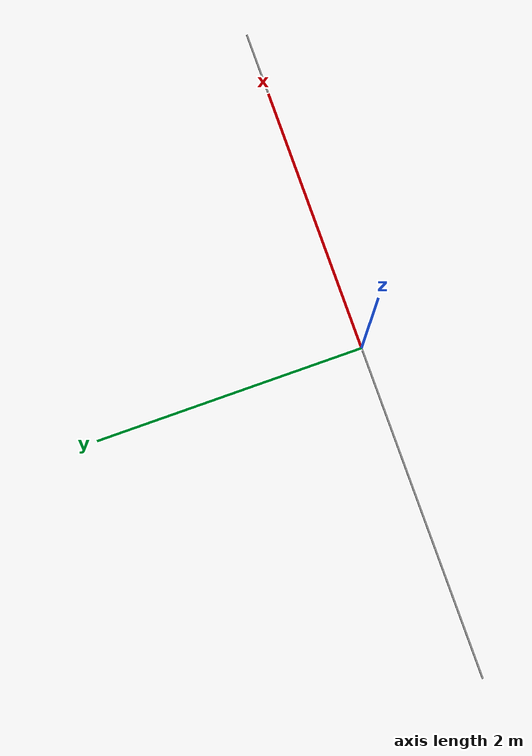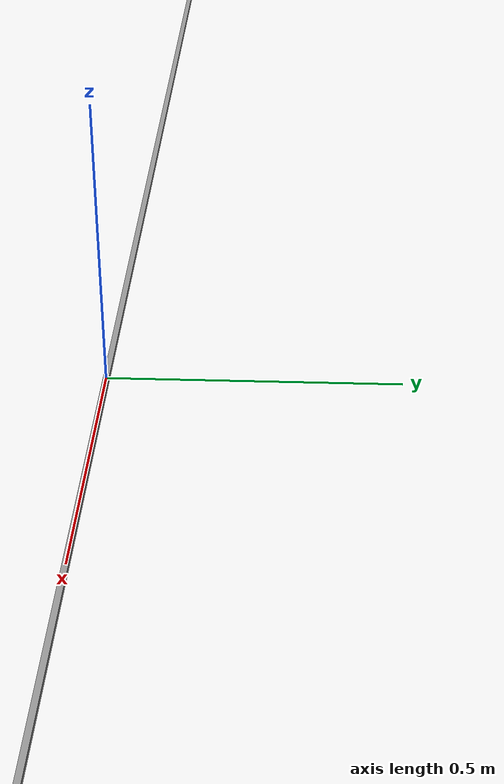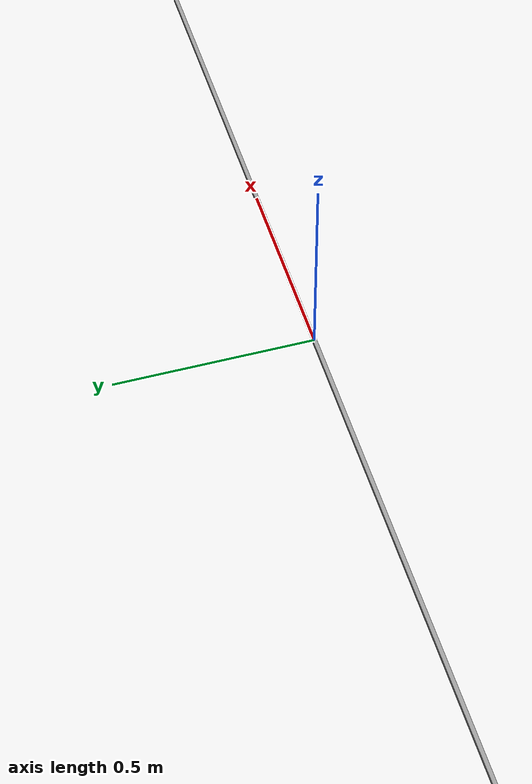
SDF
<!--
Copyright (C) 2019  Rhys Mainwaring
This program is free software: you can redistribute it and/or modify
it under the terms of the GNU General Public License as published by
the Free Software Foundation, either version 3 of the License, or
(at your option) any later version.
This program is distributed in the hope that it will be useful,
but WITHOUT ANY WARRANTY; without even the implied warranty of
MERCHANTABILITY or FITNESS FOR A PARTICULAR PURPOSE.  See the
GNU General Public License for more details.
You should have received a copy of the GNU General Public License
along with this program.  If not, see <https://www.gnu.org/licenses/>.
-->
<?xml version='1.0'?>
<sdf version='1.6'>

  <model name='chain_link_long'>
    <pose>0 0 0 0 0 0</pose>
    <static>false</static>
    <link name="base_link">
      <visual name="base_visual">
        <geometry>
          <box>
            <size>4.95 0.01 0.01</size>
          </box>
        </geometry>
        <material>
          <script>
            <name>Gazebo/Grey</name>
          </script>
        </material>
      </visual>
      <collision name="base_collision">
        <max_contacts>2</max_contacts>
        <geometry>
          <box>
            <size>4.95 0.01 0.01</size>
          </box>
        </geometry>
      </collision>
      <inertial>
        <pose>0 0 0 0 0 0</pose>
        <mass>3.81</mass>
        <inertia>
          <ixx>0.0000635</ixx>
          <ixy>0</ixy>
          <iyy>7.78</iyy>
          <iyz>0</iyz>
          <izz>7.78</izz>
        </inertia>
      </inertial>
    </link>
  </model>
</sdf>
